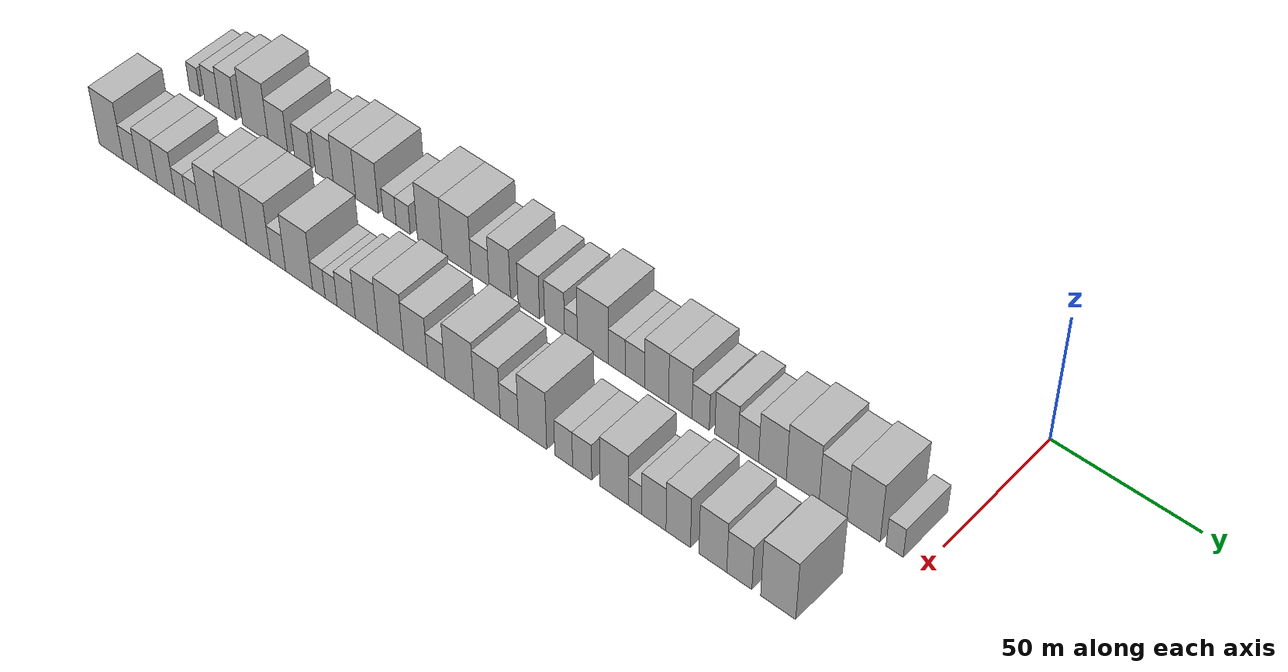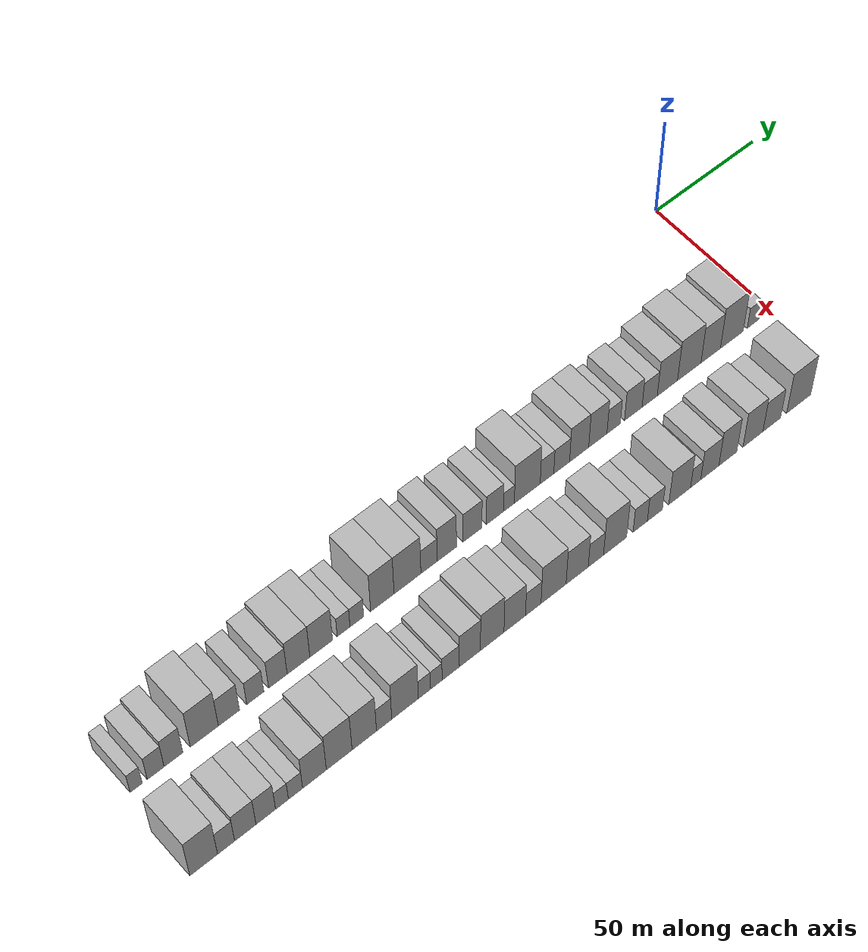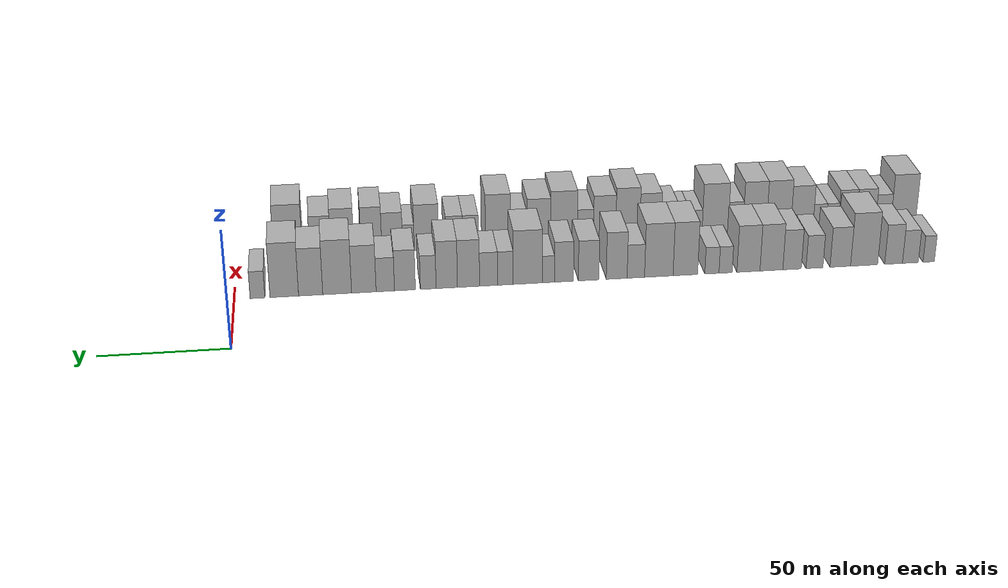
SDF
<sdf version="1.6">
 <world name="default">
  <model name="building_1">
   <static>1</static>
   <pose>50.0000 -284.5821 0 0.000000 0.000000 0.000000</pose>
   <link name="link">
    <pose>0 0 6.00 0 0 0</pose>
    <collision name="collision"><geometry><box><size>20.0000 4.8358 12.0000</size></box></geometry></collision>
    <visual name="visual">
     <cast_shadows>0</cast_shadows>
     <geometry><box><size>20.0000 4.8358 12.0000</size></box></geometry>
     <material>
      <script>
       <uri>model://HANNAS_wall/materials/scripts</uri>
       <uri>model://HANNAS_wall/materials/textures</uri>
       <name>vrc/HANNAS_wall</name>
      </script>
     </material>
    </visual>
   </link>
  </model>
  <model name="building_2">
   <static>1</static>
   <pose>50.0000 -276.7835 0 0.000000 0.000000 0.000000</pose>
   <link name="link">
    <pose>0 0 7.50 0 0 0</pose>
    <collision name="collision"><geometry><box><size>20.0000 6.7614 15.0000</size></box></geometry></collision>
    <visual name="visual">
     <cast_shadows>0</cast_shadows>
     <geometry><box><size>20.0000 6.7614 15.0000</size></box></geometry>
     <material>
      <script>
       <uri>model://HANNAS_wall/materials/scripts</uri>
       <uri>model://HANNAS_wall/materials/textures</uri>
       <name>vrc/HANNAS_wall</name>
      </script>
     </material>
    </visual>
   </link>
  </model>
  <model name="building_3">
   <static>1</static>
   <pose>50.0000 -269.6287 0 0.000000 0.000000 0.000000</pose>
   <link name="link">
    <pose>0 0 9.00 0 0 0</pose>
    <collision name="collision"><geometry><box><size>20.0000 7.5483 18.0000</size></box></geometry></collision>
    <visual name="visual">
     <cast_shadows>0</cast_shadows>
     <geometry><box><size>20.0000 7.5483 18.0000</size></box></geometry>
     <material>
      <script>
       <uri>model://HANNAS_wall/materials/scripts</uri>
       <uri>model://HANNAS_wall/materials/textures</uri>
       <name>vrc/HANNAS_wall</name>
      </script>
     </material>
    </visual>
   </link>
  </model>
  <model name="building_4">
   <static>1</static>
   <pose>50.0000 -257.1245 0 0.000000 0.000000 0.000000</pose>
   <link name="link">
    <pose>0 0 12.00 0 0 0</pose>
    <collision name="collision"><geometry><box><size>20.0000 11.4601 24.0000</size></box></geometry></collision>
    <visual name="visual">
     <cast_shadows>0</cast_shadows>
     <geometry><box><size>20.0000 11.4601 24.0000</size></box></geometry>
     <material>
      <script>
       <uri>model://HANNAS_wall/materials/scripts</uri>
       <uri>model://HANNAS_wall/materials/textures</uri>
       <name>vrc/HANNAS_wall</name>
      </script>
     </material>
    </visual>
   </link>
  </model>
  <model name="building_5">
   <static>1</static>
   <pose>50.0000 -247.0553 0 0.000000 0.000000 0.000000</pose>
   <link name="link">
    <pose>0 0 9.00 0 0 0</pose>
    <collision name="collision"><geometry><box><size>20.0000 8.6783 18.0000</size></box></geometry></collision>
    <visual name="visual">
     <cast_shadows>0</cast_shadows>
     <geometry><box><size>20.0000 8.6783 18.0000</size></box></geometry>
     <material>
      <script>
       <uri>model://HANNAS_wall/materials/scripts</uri>
       <uri>model://HANNAS_wall/materials/textures</uri>
       <name>vrc/HANNAS_wall</name>
      </script>
     </material>
    </visual>
   </link>
  </model>
  <model name="building_6">
   <static>1</static>
   <pose>50.0000 -236.1690 0 0.000000 0.000000 0.000000</pose>
   <link name="link">
    <pose>0 0 7.50 0 0 0</pose>
    <collision name="collision"><geometry><box><size>20.0000 7.0943 15.0000</size></box></geometry></collision>
    <visual name="visual">
     <cast_shadows>0</cast_shadows>
     <geometry><box><size>20.0000 7.0943 15.0000</size></box></geometry>
     <material>
      <script>
       <uri>model://HANNAS_wall/materials/scripts</uri>
       <uri>model://HANNAS_wall/materials/textures</uri>
       <name>vrc/HANNAS_wall</name>
      </script>
     </material>
    </visual>
   </link>
  </model>
  <model name="building_7">
   <static>1</static>
   <pose>50.0000 -226.7389 0 0.000000 0.000000 0.000000</pose>
   <link name="link">
    <pose>0 0 9.00 0 0 0</pose>
    <collision name="collision"><geometry><box><size>20.0000 7.7658 18.0000</size></box></geometry></collision>
    <visual name="visual">
     <cast_shadows>0</cast_shadows>
     <geometry><box><size>20.0000 7.7658 18.0000</size></box></geometry>
     <material>
      <script>
       <uri>model://HANNAS_wall/materials/scripts</uri>
       <uri>model://HANNAS_wall/materials/textures</uri>
       <name>vrc/HANNAS_wall</name>
      </script>
     </material>
    </visual>
   </link>
  </model>
  <model name="building_8">
   <static>1</static>
   <pose>50.0000 -218.0678 0 0.000000 0.000000 0.000000</pose>
   <link name="link">
    <pose>0 0 10.50 0 0 0</pose>
    <collision name="collision"><geometry><box><size>20.0000 9.5763 21.0000</size></box></geometry></collision>
    <visual name="visual">
     <cast_shadows>0</cast_shadows>
     <geometry><box><size>20.0000 9.5763 21.0000</size></box></geometry>
     <material>
      <script>
       <uri>model://HANNAS_wall/materials/scripts</uri>
       <uri>model://HANNAS_wall/materials/textures</uri>
       <name>vrc/HANNAS_wall</name>
      </script>
     </material>
    </visual>
   </link>
  </model>
  <model name="building_9">
   <static>1</static>
   <pose>50.0000 -208.4706 0 0.000000 0.000000 0.000000</pose>
   <link name="link">
    <pose>0 0 10.50 0 0 0</pose>
    <collision name="collision"><geometry><box><size>20.0000 9.6182 21.0000</size></box></geometry></collision>
    <visual name="visual">
     <cast_shadows>0</cast_shadows>
     <geometry><box><size>20.0000 9.6182 21.0000</size></box></geometry>
     <material>
      <script>
       <uri>model://HANNAS_wall/materials/scripts</uri>
       <uri>model://HANNAS_wall/materials/textures</uri>
       <name>vrc/HANNAS_wall</name>
      </script>
     </material>
    </visual>
   </link>
  </model>
  <model name="building_10">
   <static>1</static>
   <pose>50.0000 -198.9174 0 0.000000 0.000000 0.000000</pose>
   <link name="link">
    <pose>0 0 6.00 0 0 0</pose>
    <collision name="collision"><geometry><box><size>20.0000 5.4881 12.0000</size></box></geometry></collision>
    <visual name="visual">
     <cast_shadows>0</cast_shadows>
     <geometry><box><size>20.0000 5.4881 12.0000</size></box></geometry>
     <material>
      <script>
       <uri>model://HANNAS_wall/materials/scripts</uri>
       <uri>model://HANNAS_wall/materials/textures</uri>
       <name>vrc/HANNAS_wall</name>
      </script>
     </material>
    </visual>
   </link>
  </model>
  <model name="building_11">
   <static>1</static>
   <pose>50.0000 -193.2363 0 0.000000 0.000000 0.000000</pose>
   <link name="link">
    <pose>0 0 6.00 0 0 0</pose>
    <collision name="collision"><geometry><box><size>20.0000 5.8742 12.0000</size></box></geometry></collision>
    <visual name="visual">
     <cast_shadows>0</cast_shadows>
     <geometry><box><size>20.0000 5.8742 12.0000</size></box></geometry>
     <material>
      <script>
       <uri>model://HANNAS_wall/materials/scripts</uri>
       <uri>model://HANNAS_wall/materials/textures</uri>
       <name>vrc/HANNAS_wall</name>
      </script>
     </material>
    </visual>
   </link>
  </model>
  <model name="building_12">
   <static>1</static>
   <pose>50.0000 -182.2028 0 0.000000 0.000000 0.000000</pose>
   <link name="link">
    <pose>0 0 12.00 0 0 0</pose>
    <collision name="collision"><geometry><box><size>20.0000 10.1927 24.0000</size></box></geometry></collision>
    <visual name="visual">
     <cast_shadows>0</cast_shadows>
     <geometry><box><size>20.0000 10.1927 24.0000</size></box></geometry>
     <material>
      <script>
       <uri>model://HANNAS_wall/materials/scripts</uri>
       <uri>model://HANNAS_wall/materials/textures</uri>
       <name>vrc/HANNAS_wall</name>
      </script>
     </material>
    </visual>
   </link>
  </model>
  <model name="building_13">
   <static>1</static>
   <pose>50.0000 -171.2083 0 0.000000 0.000000 0.000000</pose>
   <link name="link">
    <pose>0 0 12.00 0 0 0</pose>
    <collision name="collision"><geometry><box><size>20.0000 11.7963 24.0000</size></box></geometry></collision>
    <visual name="visual">
     <cast_shadows>0</cast_shadows>
     <geometry><box><size>20.0000 11.7963 24.0000</size></box></geometry>
     <material>
      <script>
       <uri>model://HANNAS_wall/materials/scripts</uri>
       <uri>model://HANNAS_wall/materials/textures</uri>
       <name>vrc/HANNAS_wall</name>
      </script>
     </material>
    </visual>
   </link>
  </model>
  <model name="building_14">
   <static>1</static>
   <pose>50.0000 -161.7146 0 0.000000 0.000000 0.000000</pose>
   <link name="link">
    <pose>0 0 7.50 0 0 0</pose>
    <collision name="collision"><geometry><box><size>20.0000 7.1911 15.0000</size></box></geometry></collision>
    <visual name="visual">
     <cast_shadows>0</cast_shadows>
     <geometry><box><size>20.0000 7.1911 15.0000</size></box></geometry>
     <material>
      <script>
       <uri>model://HANNAS_wall/materials/scripts</uri>
       <uri>model://HANNAS_wall/materials/textures</uri>
       <name>vrc/HANNAS_wall</name>
      </script>
     </material>
    </visual>
   </link>
  </model>
  <model name="building_15">
   <static>1</static>
   <pose>50.0000 -153.8216 0 0.000000 0.000000 0.000000</pose>
   <link name="link">
    <pose>0 0 10.50 0 0 0</pose>
    <collision name="collision"><geometry><box><size>20.0000 8.5948 21.0000</size></box></geometry></collision>
    <visual name="visual">
     <cast_shadows>0</cast_shadows>
     <geometry><box><size>20.0000 8.5948 21.0000</size></box></geometry>
     <material>
      <script>
       <uri>model://HANNAS_wall/materials/scripts</uri>
       <uri>model://HANNAS_wall/materials/textures</uri>
       <name>vrc/HANNAS_wall</name>
      </script>
     </material>
    </visual>
   </link>
  </model>
  <model name="building_16">
   <static>1</static>
   <pose>50.0000 -142.3034 0 0.000000 0.000000 0.000000</pose>
   <link name="link">
    <pose>0 0 9.00 0 0 0</pose>
    <collision name="collision"><geometry><box><size>20.0000 8.4416 18.0000</size></box></geometry></collision>
    <visual name="visual">
     <cast_shadows>0</cast_shadows>
     <geometry><box><size>20.0000 8.4416 18.0000</size></box></geometry>
     <material>
      <script>
       <uri>model://HANNAS_wall/materials/scripts</uri>
       <uri>model://HANNAS_wall/materials/textures</uri>
       <name>vrc/HANNAS_wall</name>
      </script>
     </material>
    </visual>
   </link>
  </model>
  <model name="building_17">
   <static>1</static>
   <pose>50.0000 -132.2078 0 0.000000 0.000000 0.000000</pose>
   <link name="link">
    <pose>0 0 9.00 0 0 0</pose>
    <collision name="collision"><geometry><box><size>20.0000 7.7498 18.0000</size></box></geometry></collision>
    <visual name="visual">
     <cast_shadows>0</cast_shadows>
     <geometry><box><size>20.0000 7.7498 18.0000</size></box></geometry>
     <material>
      <script>
       <uri>model://HANNAS_wall/materials/scripts</uri>
       <uri>model://HANNAS_wall/materials/textures</uri>
       <name>vrc/HANNAS_wall</name>
      </script>
     </material>
    </visual>
   </link>
  </model>
  <model name="building_18">
   <static>1</static>
   <pose>50.0000 -125.8499 0 0.000000 0.000000 0.000000</pose>
   <link name="link">
    <pose>0 0 6.00 0 0 0</pose>
    <collision name="collision"><geometry><box><size>20.0000 4.9659 12.0000</size></box></geometry></collision>
    <visual name="visual">
     <cast_shadows>0</cast_shadows>
     <geometry><box><size>20.0000 4.9659 12.0000</size></box></geometry>
     <material>
      <script>
       <uri>model://HANNAS_wall/materials/scripts</uri>
       <uri>model://HANNAS_wall/materials/textures</uri>
       <name>vrc/HANNAS_wall</name>
      </script>
     </material>
    </visual>
   </link>
  </model>
  <model name="building_19">
   <static>1</static>
   <pose>50.0000 -117.4354 0 0.000000 0.000000 0.000000</pose>
   <link name="link">
    <pose>0 0 12.00 0 0 0</pose>
    <collision name="collision"><geometry><box><size>20.0000 11.8631 24.0000</size></box></geometry></collision>
    <visual name="visual">
     <cast_shadows>0</cast_shadows>
     <geometry><box><size>20.0000 11.8631 24.0000</size></box></geometry>
     <material>
      <script>
       <uri>model://HANNAS_wall/materials/scripts</uri>
       <uri>model://HANNAS_wall/materials/textures</uri>
       <name>vrc/HANNAS_wall</name>
      </script>
     </material>
    </visual>
   </link>
  </model>
  <model name="building_20">
   <static>1</static>
   <pose>50.0000 -108.3577 0 0.000000 0.000000 0.000000</pose>
   <link name="link">
    <pose>0 0 7.50 0 0 0</pose>
    <collision name="collision"><geometry><box><size>20.0000 6.2923 15.0000</size></box></geometry></collision>
    <visual name="visual">
     <cast_shadows>0</cast_shadows>
     <geometry><box><size>20.0000 6.2923 15.0000</size></box></geometry>
     <material>
      <script>
       <uri>model://HANNAS_wall/materials/scripts</uri>
       <uri>model://HANNAS_wall/materials/textures</uri>
       <name>vrc/HANNAS_wall</name>
      </script>
     </material>
    </visual>
   </link>
  </model>
  <model name="building_21">
   <static>1</static>
   <pose>50.0000 -101.5367 0 0.000000 0.000000 0.000000</pose>
   <link name="link">
    <pose>0 0 7.50 0 0 0</pose>
    <collision name="collision"><geometry><box><size>20.0000 7.3498 15.0000</size></box></geometry></collision>
    <visual name="visual">
     <cast_shadows>0</cast_shadows>
     <geometry><box><size>20.0000 7.3498 15.0000</size></box></geometry>
     <material>
      <script>
       <uri>model://HANNAS_wall/materials/scripts</uri>
       <uri>model://HANNAS_wall/materials/textures</uri>
       <name>vrc/HANNAS_wall</name>
      </script>
     </material>
    </visual>
   </link>
  </model>
  <model name="building_22">
   <static>1</static>
   <pose>50.0000 -93.3873 0 0.000000 0.000000 0.000000</pose>
   <link name="link">
    <pose>0 0 10.50 0 0 0</pose>
    <collision name="collision"><geometry><box><size>20.0000 8.9489 21.0000</size></box></geometry></collision>
    <visual name="visual">
     <cast_shadows>0</cast_shadows>
     <geometry><box><size>20.0000 8.9489 21.0000</size></box></geometry>
     <material>
      <script>
       <uri>model://HANNAS_wall/materials/scripts</uri>
       <uri>model://HANNAS_wall/materials/textures</uri>
       <name>vrc/HANNAS_wall</name>
      </script>
     </material>
    </visual>
   </link>
  </model>
  <model name="building_23">
   <static>1</static>
   <pose>50.0000 -84.6043 0 0.000000 0.000000 0.000000</pose>
   <link name="link">
    <pose>0 0 10.50 0 0 0</pose>
    <collision name="collision"><geometry><box><size>20.0000 8.6171 21.0000</size></box></geometry></collision>
    <visual name="visual">
     <cast_shadows>0</cast_shadows>
     <geometry><box><size>20.0000 8.6171 21.0000</size></box></geometry>
     <material>
      <script>
       <uri>model://HANNAS_wall/materials/scripts</uri>
       <uri>model://HANNAS_wall/materials/textures</uri>
       <name>vrc/HANNAS_wall</name>
      </script>
     </material>
    </visual>
   </link>
  </model>
  <model name="building_24">
   <static>1</static>
   <pose>50.0000 -77.1314 0 0.000000 0.000000 0.000000</pose>
   <link name="link">
    <pose>0 0 7.50 0 0 0</pose>
    <collision name="collision"><geometry><box><size>20.0000 6.3286 15.0000</size></box></geometry></collision>
    <visual name="visual">
     <cast_shadows>0</cast_shadows>
     <geometry><box><size>20.0000 6.3286 15.0000</size></box></geometry>
     <material>
      <script>
       <uri>model://HANNAS_wall/materials/scripts</uri>
       <uri>model://HANNAS_wall/materials/textures</uri>
       <name>vrc/HANNAS_wall</name>
      </script>
     </material>
    </visual>
   </link>
  </model>
  <model name="building_25">
   <static>1</static>
   <pose>50.0000 -67.7709 0 0.000000 0.000000 0.000000</pose>
   <link name="link">
    <pose>0 0 9.00 0 0 0</pose>
    <collision name="collision"><geometry><box><size>20.0000 8.3924 18.0000</size></box></geometry></collision>
    <visual name="visual">
     <cast_shadows>0</cast_shadows>
     <geometry><box><size>20.0000 8.3924 18.0000</size></box></geometry>
     <material>
      <script>
       <uri>model://HANNAS_wall/materials/scripts</uri>
       <uri>model://HANNAS_wall/materials/textures</uri>
       <name>vrc/HANNAS_wall</name>
      </script>
     </material>
    </visual>
   </link>
  </model>
  <model name="building_26">
   <static>1</static>
   <pose>50.0000 -59.8988 0 0.000000 0.000000 0.000000</pose>
   <link name="link">
    <pose>0 0 7.50 0 0 0</pose>
    <collision name="collision"><geometry><box><size>20.0000 7.3519 15.0000</size></box></geometry></collision>
    <visual name="visual">
     <cast_shadows>0</cast_shadows>
     <geometry><box><size>20.0000 7.3519 15.0000</size></box></geometry>
     <material>
      <script>
       <uri>model://HANNAS_wall/materials/scripts</uri>
       <uri>model://HANNAS_wall/materials/textures</uri>
       <name>vrc/HANNAS_wall</name>
      </script>
     </material>
    </visual>
   </link>
  </model>
  <model name="building_27">
   <static>1</static>
   <pose>50.0000 -51.3166 0 0.000000 0.000000 0.000000</pose>
   <link name="link">
    <pose>0 0 10.50 0 0 0</pose>
    <collision name="collision"><geometry><box><size>20.0000 9.8125 21.0000</size></box></geometry></collision>
    <visual name="visual">
     <cast_shadows>0</cast_shadows>
     <geometry><box><size>20.0000 9.8125 21.0000</size></box></geometry>
     <material>
      <script>
       <uri>model://HANNAS_wall/materials/scripts</uri>
       <uri>model://HANNAS_wall/materials/textures</uri>
       <name>vrc/HANNAS_wall</name>
      </script>
     </material>
    </visual>
   </link>
  </model>
  <model name="building_28">
   <static>1</static>
   <pose>50.0000 -40.6690 0 0.000000 0.000000 0.000000</pose>
   <link name="link">
    <pose>0 0 12.00 0 0 0</pose>
    <collision name="collision"><geometry><box><size>20.0000 11.4826 24.0000</size></box></geometry></collision>
    <visual name="visual">
     <cast_shadows>0</cast_shadows>
     <geometry><box><size>20.0000 11.4826 24.0000</size></box></geometry>
     <material>
      <script>
       <uri>model://HANNAS_wall/materials/scripts</uri>
       <uri>model://HANNAS_wall/materials/textures</uri>
       <name>vrc/HANNAS_wall</name>
      </script>
     </material>
    </visual>
   </link>
  </model>
  <model name="building_29">
   <static>1</static>
   <pose>50.0000 -30.1226 0 0.000000 0.000000 0.000000</pose>
   <link name="link">
    <pose>0 0 10.50 0 0 0</pose>
    <collision name="collision"><geometry><box><size>20.0000 9.6104 21.0000</size></box></geometry></collision>
    <visual name="visual">
     <cast_shadows>0</cast_shadows>
     <geometry><box><size>20.0000 9.6104 21.0000</size></box></geometry>
     <material>
      <script>
       <uri>model://HANNAS_wall/materials/scripts</uri>
       <uri>model://HANNAS_wall/materials/textures</uri>
       <name>vrc/HANNAS_wall</name>
      </script>
     </material>
    </visual>
   </link>
  </model>
  <model name="building_30">
   <static>1</static>
   <pose>50.0000 -19.6471 0 0.000000 0.000000 0.000000</pose>
   <link name="link">
    <pose>0 0 12.00 0 0 0</pose>
    <collision name="collision"><geometry><box><size>20.0000 11.3405 24.0000</size></box></geometry></collision>
    <visual name="visual">
     <cast_shadows>0</cast_shadows>
     <geometry><box><size>20.0000 11.3405 24.0000</size></box></geometry>
     <material>
      <script>
       <uri>model://HANNAS_wall/materials/scripts</uri>
       <uri>model://HANNAS_wall/materials/textures</uri>
       <name>vrc/HANNAS_wall</name>
      </script>
     </material>
    </visual>
   </link>
  </model>
  <model name="building_31">
   <static>1</static>
   <pose>50.0000 -9.0695 0 0.000000 0.000000 0.000000</pose>
   <link name="link">
    <pose>0 0 6.00 0 0 0</pose>
    <collision name="collision"><geometry><box><size>20.0000 5.8147 12.0000</size></box></geometry></collision>
    <visual name="visual">
     <cast_shadows>0</cast_shadows>
     <geometry><box><size>20.0000 5.8147 12.0000</size></box></geometry>
     <material>
      <script>
       <uri>model://HANNAS_wall/materials/scripts</uri>
       <uri>model://HANNAS_wall/materials/textures</uri>
       <name>vrc/HANNAS_wall</name>
      </script>
     </material>
    </visual>
   </link>
  </model>
  <model name="building_67">
   <static>1</static>
   <pose>85.0000 -284.5116 0 0.000000 0.000000 0.000000</pose>
   <link name="link">
    <pose>0 0 12.00 0 0 0</pose>
    <collision name="collision"><geometry><box><size>20.0000 10.9768 24.0000</size></box></geometry></collision>
    <visual name="visual">
     <cast_shadows>0</cast_shadows>
     <geometry><box><size>20.0000 10.9768 24.0000</size></box></geometry>
     <material>
      <script>
       <uri>model://HANNAS_wall/materials/scripts</uri>
       <uri>model://HANNAS_wall/materials/textures</uri>
       <name>vrc/HANNAS_wall</name>
      </script>
     </material>
    </visual>
   </link>
  </model>
  <model name="building_68">
   <static>1</static>
   <pose>85.0000 -275.6264 0 0.000000 0.000000 0.000000</pose>
   <link name="link">
    <pose>0 0 7.50 0 0 0</pose>
    <collision name="collision"><geometry><box><size>20.0000 6.7936 15.0000</size></box></geometry></collision>
    <visual name="visual">
     <cast_shadows>0</cast_shadows>
     <geometry><box><size>20.0000 6.7936 15.0000</size></box></geometry>
     <material>
      <script>
       <uri>model://HANNAS_wall/materials/scripts</uri>
       <uri>model://HANNAS_wall/materials/textures</uri>
       <name>vrc/HANNAS_wall</name>
      </script>
     </material>
    </visual>
   </link>
  </model>
  <model name="building_69">
   <static>1</static>
   <pose>85.0000 -267.9458 0 0.000000 0.000000 0.000000</pose>
   <link name="link">
    <pose>0 0 9.00 0 0 0</pose>
    <collision name="collision"><geometry><box><size>20.0000 8.5676 18.0000</size></box></geometry></collision>
    <visual name="visual">
     <cast_shadows>0</cast_shadows>
     <geometry><box><size>20.0000 8.5676 18.0000</size></box></geometry>
     <material>
      <script>
       <uri>model://HANNAS_wall/materials/scripts</uri>
       <uri>model://HANNAS_wall/materials/textures</uri>
       <name>vrc/HANNAS_wall</name>
      </script>
     </material>
    </visual>
   </link>
  </model>
  <model name="building_70">
   <static>1</static>
   <pose>85.0000 -259.7054 0 0.000000 0.000000 0.000000</pose>
   <link name="link">
    <pose>0 0 9.00 0 0 0</pose>
    <collision name="collision"><geometry><box><size>20.0000 7.9131 18.0000</size></box></geometry></collision>
    <visual name="visual">
     <cast_shadows>0</cast_shadows>
     <geometry><box><size>20.0000 7.9131 18.0000</size></box></geometry>
     <material>
      <script>
       <uri>model://HANNAS_wall/materials/scripts</uri>
       <uri>model://HANNAS_wall/materials/textures</uri>
       <name>vrc/HANNAS_wall</name>
      </script>
     </material>
    </visual>
   </link>
  </model>
  <model name="building_71">
   <static>1</static>
   <pose>85.0000 -253.1240 0 0.000000 0.000000 0.000000</pose>
   <link name="link">
    <pose>0 0 6.00 0 0 0</pose>
    <collision name="collision"><geometry><box><size>20.0000 5.2497 12.0000</size></box></geometry></collision>
    <visual name="visual">
     <cast_shadows>0</cast_shadows>
     <geometry><box><size>20.0000 5.2497 12.0000</size></box></geometry>
     <material>
      <script>
       <uri>model://HANNAS_wall/materials/scripts</uri>
       <uri>model://HANNAS_wall/materials/textures</uri>
       <name>vrc/HANNAS_wall</name>
      </script>
     </material>
    </visual>
   </link>
  </model>
  <model name="building_72">
   <static>1</static>
   <pose>85.0000 -247.5961 0 0.000000 0.000000 0.000000</pose>
   <link name="link">
    <pose>0 0 6.00 0 0 0</pose>
    <collision name="collision"><geometry><box><size>20.0000 5.8059 12.0000</size></box></geometry></collision>
    <visual name="visual">
     <cast_shadows>0</cast_shadows>
     <geometry><box><size>20.0000 5.8059 12.0000</size></box></geometry>
     <material>
      <script>
       <uri>model://HANNAS_wall/materials/scripts</uri>
       <uri>model://HANNAS_wall/materials/textures</uri>
       <name>vrc/HANNAS_wall</name>
      </script>
     </material>
    </visual>
   </link>
  </model>
  <model name="building_73">
   <static>1</static>
   <pose>85.0000 -239.8129 0 0.000000 0.000000 0.000000</pose>
   <link name="link">
    <pose>0 0 10.50 0 0 0</pose>
    <collision name="collision"><geometry><box><size>20.0000 9.7606 21.0000</size></box></geometry></collision>
    <visual name="visual">
     <cast_shadows>0</cast_shadows>
     <geometry><box><size>20.0000 9.7606 21.0000</size></box></geometry>
     <material>
      <script>
       <uri>model://HANNAS_wall/materials/scripts</uri>
       <uri>model://HANNAS_wall/materials/textures</uri>
       <name>vrc/HANNAS_wall</name>
      </script>
     </material>
    </visual>
   </link>
  </model>
  <model name="building_74">
   <static>1</static>
   <pose>85.0000 -229.5916 0 0.000000 0.000000 0.000000</pose>
   <link name="link">
    <pose>0 0 12.00 0 0 0</pose>
    <collision name="collision"><geometry><box><size>20.0000 10.6818 24.0000</size></box></geometry></collision>
    <visual name="visual">
     <cast_shadows>0</cast_shadows>
     <geometry><box><size>20.0000 10.6818 24.0000</size></box></geometry>
     <material>
      <script>
       <uri>model://HANNAS_wall/materials/scripts</uri>
       <uri>model://HANNAS_wall/materials/textures</uri>
       <name>vrc/HANNAS_wall</name>
      </script>
     </material>
    </visual>
   </link>
  </model>
  <model name="building_75">
   <static>1</static>
   <pose>85.0000 -219.1340 0 0.000000 0.000000 0.000000</pose>
   <link name="link">
    <pose>0 0 12.00 0 0 0</pose>
    <collision name="collision"><geometry><box><size>20.0000 10.2335 24.0000</size></box></geometry></collision>
    <visual name="visual">
     <cast_shadows>0</cast_shadows>
     <geometry><box><size>20.0000 10.2335 24.0000</size></box></geometry>
     <material>
      <script>
       <uri>model://HANNAS_wall/materials/scripts</uri>
       <uri>model://HANNAS_wall/materials/textures</uri>
       <name>vrc/HANNAS_wall</name>
      </script>
     </material>
    </visual>
   </link>
  </model>
  <model name="building_76">
   <static>1</static>
   <pose>85.0000 -210.8049 0 0.000000 0.000000 0.000000</pose>
   <link name="link">
    <pose>0 0 7.50 0 0 0</pose>
    <collision name="collision"><geometry><box><size>20.0000 6.4245 15.0000</size></box></geometry></collision>
    <visual name="visual">
     <cast_shadows>0</cast_shadows>
     <geometry><box><size>20.0000 6.4245 15.0000</size></box></geometry>
     <material>
      <script>
       <uri>model://HANNAS_wall/materials/scripts</uri>
       <uri>model://HANNAS_wall/materials/textures</uri>
       <name>vrc/HANNAS_wall</name>
      </script>
     </material>
    </visual>
   </link>
  </model>
  <model name="building_77">
   <static>1</static>
   <pose>85.0000 -201.9396 0 0.000000 0.000000 0.000000</pose>
   <link name="link">
    <pose>0 0 12.00 0 0 0</pose>
    <collision name="collision"><geometry><box><size>20.0000 11.3061 24.0000</size></box></geometry></collision>
    <visual name="visual">
     <cast_shadows>0</cast_shadows>
     <geometry><box><size>20.0000 11.3061 24.0000</size></box></geometry>
     <material>
      <script>
       <uri>model://HANNAS_wall/materials/scripts</uri>
       <uri>model://HANNAS_wall/materials/textures</uri>
       <name>vrc/HANNAS_wall</name>
      </script>
     </material>
    </visual>
   </link>
  </model>
  <model name="building_78">
   <static>1</static>
   <pose>85.0000 -193.6559 0 0.000000 0.000000 0.000000</pose>
   <link name="link">
    <pose>0 0 6.00 0 0 0</pose>
    <collision name="collision"><geometry><box><size>20.0000 5.2613 12.0000</size></box></geometry></collision>
    <visual name="visual">
     <cast_shadows>0</cast_shadows>
     <geometry><box><size>20.0000 5.2613 12.0000</size></box></geometry>
     <material>
      <script>
       <uri>model://HANNAS_wall/materials/scripts</uri>
       <uri>model://HANNAS_wall/materials/textures</uri>
       <name>vrc/HANNAS_wall</name>
      </script>
     </material>
    </visual>
   </link>
  </model>
  <model name="building_79">
   <static>1</static>
   <pose>85.0000 -188.5386 0 0.000000 0.000000 0.000000</pose>
   <link name="link">
    <pose>0 0 6.00 0 0 0</pose>
    <collision name="collision"><geometry><box><size>20.0000 4.9735 12.0000</size></box></geometry></collision>
    <visual name="visual">
     <cast_shadows>0</cast_shadows>
     <geometry><box><size>20.0000 4.9735 12.0000</size></box></geometry>
     <material>
      <script>
       <uri>model://HANNAS_wall/materials/scripts</uri>
       <uri>model://HANNAS_wall/materials/textures</uri>
       <name>vrc/HANNAS_wall</name>
      </script>
     </material>
    </visual>
   </link>
  </model>
  <model name="building_80">
   <static>1</static>
   <pose>85.0000 -182.3214 0 0.000000 0.000000 0.000000</pose>
   <link name="link">
    <pose>0 0 7.50 0 0 0</pose>
    <collision name="collision"><geometry><box><size>20.0000 7.4608 15.0000</size></box></geometry></collision>
    <visual name="visual">
     <cast_shadows>0</cast_shadows>
     <geometry><box><size>20.0000 7.4608 15.0000</size></box></geometry>
     <material>
      <script>
       <uri>model://HANNAS_wall/materials/scripts</uri>
       <uri>model://HANNAS_wall/materials/textures</uri>
       <name>vrc/HANNAS_wall</name>
      </script>
     </material>
    </visual>
   </link>
  </model>
  <model name="building_81">
   <static>1</static>
   <pose>85.0000 -174.0023 0 0.000000 0.000000 0.000000</pose>
   <link name="link">
    <pose>0 0 10.50 0 0 0</pose>
    <collision name="collision"><geometry><box><size>20.0000 9.1774 21.0000</size></box></geometry></collision>
    <visual name="visual">
     <cast_shadows>0</cast_shadows>
     <geometry><box><size>20.0000 9.1774 21.0000</size></box></geometry>
     <material>
      <script>
       <uri>model://HANNAS_wall/materials/scripts</uri>
       <uri>model://HANNAS_wall/materials/textures</uri>
       <name>vrc/HANNAS_wall</name>
      </script>
     </material>
    </visual>
   </link>
  </model>
  <model name="building_82">
   <static>1</static>
   <pose>85.0000 -164.2383 0 0.000000 0.000000 0.000000</pose>
   <link name="link">
    <pose>0 0 12.00 0 0 0</pose>
    <collision name="collision"><geometry><box><size>20.0000 10.3506 24.0000</size></box></geometry></collision>
    <visual name="visual">
     <cast_shadows>0</cast_shadows>
     <geometry><box><size>20.0000 10.3506 24.0000</size></box></geometry>
     <material>
      <script>
       <uri>model://HANNAS_wall/materials/scripts</uri>
       <uri>model://HANNAS_wall/materials/textures</uri>
       <name>vrc/HANNAS_wall</name>
      </script>
     </material>
    </visual>
   </link>
  </model>
  <model name="building_83">
   <static>1</static>
   <pose>85.0000 -154.2932 0 0.000000 0.000000 0.000000</pose>
   <link name="link">
    <pose>0 0 10.50 0 0 0</pose>
    <collision name="collision"><geometry><box><size>20.0000 9.5396 21.0000</size></box></geometry></collision>
    <visual name="visual">
     <cast_shadows>0</cast_shadows>
     <geometry><box><size>20.0000 9.5396 21.0000</size></box></geometry>
     <material>
      <script>
       <uri>model://HANNAS_wall/materials/scripts</uri>
       <uri>model://HANNAS_wall/materials/textures</uri>
       <name>vrc/HANNAS_wall</name>
      </script>
     </material>
    </visual>
   </link>
  </model>
  <model name="building_84">
   <static>1</static>
   <pose>85.0000 -146.0621 0 0.000000 0.000000 0.000000</pose>
   <link name="link">
    <pose>0 0 7.50 0 0 0</pose>
    <collision name="collision"><geometry><box><size>20.0000 6.9225 15.0000</size></box></geometry></collision>
    <visual name="visual">
     <cast_shadows>0</cast_shadows>
     <geometry><box><size>20.0000 6.9225 15.0000</size></box></geometry>
     <material>
      <script>
       <uri>model://HANNAS_wall/materials/scripts</uri>
       <uri>model://HANNAS_wall/materials/textures</uri>
       <name>vrc/HANNAS_wall</name>
      </script>
     </material>
    </visual>
   </link>
  </model>
  <model name="building_85">
   <static>1</static>
   <pose>85.0000 -136.9521 0 0.000000 0.000000 0.000000</pose>
   <link name="link">
    <pose>0 0 12.00 0 0 0</pose>
    <collision name="collision"><geometry><box><size>20.0000 11.2976 24.0000</size></box></geometry></collision>
    <visual name="visual">
     <cast_shadows>0</cast_shadows>
     <geometry><box><size>20.0000 11.2976 24.0000</size></box></geometry>
     <material>
      <script>
       <uri>model://HANNAS_wall/materials/scripts</uri>
       <uri>model://HANNAS_wall/materials/textures</uri>
       <name>vrc/HANNAS_wall</name>
      </script>
     </material>
    </visual>
   </link>
  </model>
  <model name="building_86">
   <static>1</static>
   <pose>85.0000 -126.2799 0 0.000000 0.000000 0.000000</pose>
   <link name="link">
    <pose>0 0 10.50 0 0 0</pose>
    <collision name="collision"><geometry><box><size>20.0000 10.0468 21.0000</size></box></geometry></collision>
    <visual name="visual">
     <cast_shadows>0</cast_shadows>
     <geometry><box><size>20.0000 10.0468 21.0000</size></box></geometry>
     <material>
      <script>
       <uri>model://HANNAS_wall/materials/scripts</uri>
       <uri>model://HANNAS_wall/materials/textures</uri>
       <name>vrc/HANNAS_wall</name>
      </script>
     </material>
    </visual>
   </link>
  </model>
  <model name="building_87">
   <static>1</static>
   <pose>85.0000 -117.7573 0 0.000000 0.000000 0.000000</pose>
   <link name="link">
    <pose>0 0 7.50 0 0 0</pose>
    <collision name="collision"><geometry><box><size>20.0000 6.9983 15.0000</size></box></geometry></collision>
    <visual name="visual">
     <cast_shadows>0</cast_shadows>
     <geometry><box><size>20.0000 6.9983 15.0000</size></box></geometry>
     <material>
      <script>
       <uri>model://HANNAS_wall/materials/scripts</uri>
       <uri>model://HANNAS_wall/materials/textures</uri>
       <name>vrc/HANNAS_wall</name>
      </script>
     </material>
    </visual>
   </link>
  </model>
  <model name="building_88">
   <static>1</static>
   <pose>85.0000 -108.9462 0 0.000000 0.000000 0.000000</pose>
   <link name="link">
    <pose>0 0 12.00 0 0 0</pose>
    <collision name="collision"><geometry><box><size>20.0000 10.6239 24.0000</size></box></geometry></collision>
    <visual name="visual">
     <cast_shadows>0</cast_shadows>
     <geometry><box><size>20.0000 10.6239 24.0000</size></box></geometry>
     <material>
      <script>
       <uri>model://HANNAS_wall/materials/scripts</uri>
       <uri>model://HANNAS_wall/materials/textures</uri>
       <name>vrc/HANNAS_wall</name>
      </script>
     </material>
    </visual>
   </link>
  </model>
  <model name="building_89">
   <static>1</static>
   <pose>85.0000 -97.3171 0 0.000000 0.000000 0.000000</pose>
   <link name="link">
    <pose>0 0 7.50 0 0 0</pose>
    <collision name="collision"><geometry><box><size>20.0000 6.6342 15.0000</size></box></geometry></collision>
    <visual name="visual">
     <cast_shadows>0</cast_shadows>
     <geometry><box><size>20.0000 6.6342 15.0000</size></box></geometry>
     <material>
      <script>
       <uri>model://HANNAS_wall/materials/scripts</uri>
       <uri>model://HANNAS_wall/materials/textures</uri>
       <name>vrc/HANNAS_wall</name>
      </script>
     </material>
    </visual>
   </link>
  </model>
  <model name="building_90">
   <static>1</static>
   <pose>85.0000 -90.4682 0 0.000000 0.000000 0.000000</pose>
   <link name="link">
    <pose>0 0 7.50 0 0 0</pose>
    <collision name="collision"><geometry><box><size>20.0000 7.0636 15.0000</size></box></geometry></collision>
    <visual name="visual">
     <cast_shadows>0</cast_shadows>
     <geometry><box><size>20.0000 7.0636 15.0000</size></box></geometry>
     <material>
      <script>
       <uri>model://HANNAS_wall/materials/scripts</uri>
       <uri>model://HANNAS_wall/materials/textures</uri>
       <name>vrc/HANNAS_wall</name>
      </script>
     </material>
    </visual>
   </link>
  </model>
  <model name="building_91">
   <static>1</static>
   <pose>85.0000 -78.7869 0 0.000000 0.000000 0.000000</pose>
   <link name="link">
    <pose>0 0 10.50 0 0 0</pose>
    <collision name="collision"><geometry><box><size>20.0000 10.2990 21.0000</size></box></geometry></collision>
    <visual name="visual">
     <cast_shadows>0</cast_shadows>
     <geometry><box><size>20.0000 10.2990 21.0000</size></box></geometry>
     <material>
      <script>
       <uri>model://HANNAS_wall/materials/scripts</uri>
       <uri>model://HANNAS_wall/materials/textures</uri>
       <name>vrc/HANNAS_wall</name>
      </script>
     </material>
    </visual>
   </link>
  </model>
  <model name="building_92">
   <static>1</static>
   <pose>85.0000 -71.2208 0 0.000000 0.000000 0.000000</pose>
   <link name="link">
    <pose>0 0 6.00 0 0 0</pose>
    <collision name="collision"><geometry><box><size>20.0000 4.8332 12.0000</size></box></geometry></collision>
    <visual name="visual">
     <cast_shadows>0</cast_shadows>
     <geometry><box><size>20.0000 4.8332 12.0000</size></box></geometry>
     <material>
      <script>
       <uri>model://HANNAS_wall/materials/scripts</uri>
       <uri>model://HANNAS_wall/materials/textures</uri>
       <name>vrc/HANNAS_wall</name>
      </script>
     </material>
    </visual>
   </link>
  </model>
  <model name="building_93">
   <static>1</static>
   <pose>85.0000 -64.4557 0 0.000000 0.000000 0.000000</pose>
   <link name="link">
    <pose>0 0 9.00 0 0 0</pose>
    <collision name="collision"><geometry><box><size>20.0000 8.6970 18.0000</size></box></geometry></collision>
    <visual name="visual">
     <cast_shadows>0</cast_shadows>
     <geometry><box><size>20.0000 8.6970 18.0000</size></box></geometry>
     <material>
      <script>
       <uri>model://HANNAS_wall/materials/scripts</uri>
       <uri>model://HANNAS_wall/materials/textures</uri>
       <name>vrc/HANNAS_wall</name>
      </script>
     </material>
    </visual>
   </link>
  </model>
  <model name="building_94">
   <static>1</static>
   <pose>85.0000 -55.7973 0 0.000000 0.000000 0.000000</pose>
   <link name="link">
    <pose>0 0 10.50 0 0 0</pose>
    <collision name="collision"><geometry><box><size>20.0000 8.6198 21.0000</size></box></geometry></collision>
    <visual name="visual">
     <cast_shadows>0</cast_shadows>
     <geometry><box><size>20.0000 8.6198 21.0000</size></box></geometry>
     <material>
      <script>
       <uri>model://HANNAS_wall/materials/scripts</uri>
       <uri>model://HANNAS_wall/materials/textures</uri>
       <name>vrc/HANNAS_wall</name>
      </script>
     </material>
    </visual>
   </link>
  </model>
  <model name="building_95">
   <static>1</static>
   <pose>85.0000 -43.6313 0 0.000000 0.000000 0.000000</pose>
   <link name="link">
    <pose>0 0 10.50 0 0 0</pose>
    <collision name="collision"><geometry><box><size>20.0000 9.7122 21.0000</size></box></geometry></collision>
    <visual name="visual">
     <cast_shadows>0</cast_shadows>
     <geometry><box><size>20.0000 9.7122 21.0000</size></box></geometry>
     <material>
      <script>
       <uri>model://HANNAS_wall/materials/scripts</uri>
       <uri>model://HANNAS_wall/materials/textures</uri>
       <name>vrc/HANNAS_wall</name>
      </script>
     </material>
    </visual>
   </link>
  </model>
  <model name="building_96">
   <static>1</static>
   <pose>85.0000 -34.4453 0 0.000000 0.000000 0.000000</pose>
   <link name="link">
    <pose>0 0 9.00 0 0 0</pose>
    <collision name="collision"><geometry><box><size>20.0000 8.6599 18.0000</size></box></geometry></collision>
    <visual name="visual">
     <cast_shadows>0</cast_shadows>
     <geometry><box><size>20.0000 8.6599 18.0000</size></box></geometry>
     <material>
      <script>
       <uri>model://HANNAS_wall/materials/scripts</uri>
       <uri>model://HANNAS_wall/materials/textures</uri>
       <name>vrc/HANNAS_wall</name>
      </script>
     </material>
    </visual>
   </link>
  </model>
  <model name="building_97">
   <static>1</static>
   <pose>85.0000 -21.1608 0 0.000000 0.000000 0.000000</pose>
   <link name="link">
    <pose>0 0 12.00 0 0 0</pose>
    <collision name="collision"><geometry><box><size>20.0000 11.9090 24.0000</size></box></geometry></collision>
    <visual name="visual">
     <cast_shadows>0</cast_shadows>
     <geometry><box><size>20.0000 11.9090 24.0000</size></box></geometry>
     <material>
      <script>
       <uri>model://HANNAS_wall/materials/scripts</uri>
       <uri>model://HANNAS_wall/materials/textures</uri>
       <name>vrc/HANNAS_wall</name>
      </script>
     </material>
    </visual>
   </link>
  </model>
 </world>
</sdf>
